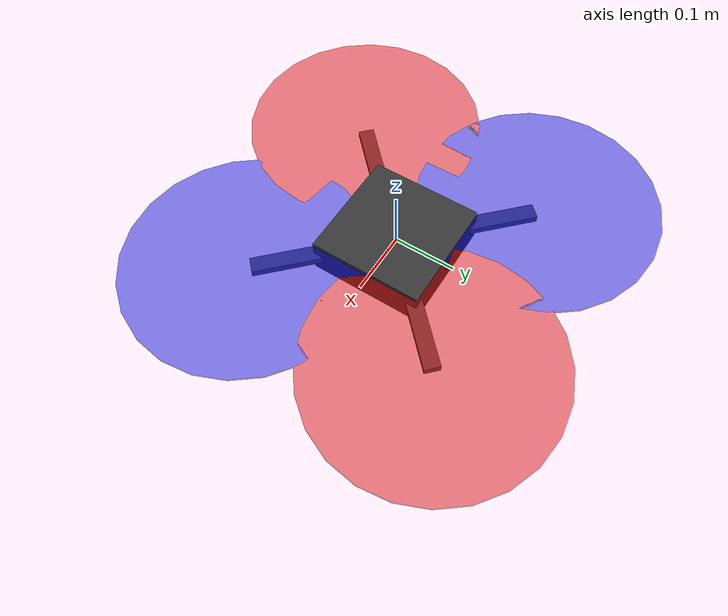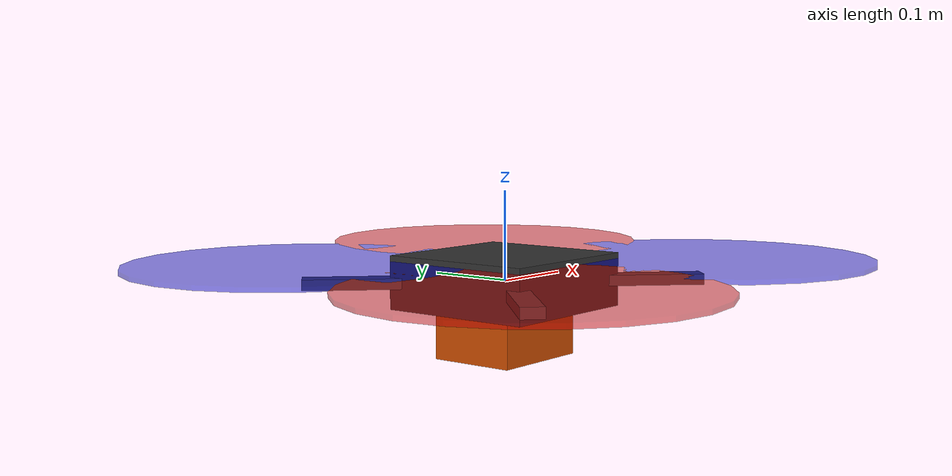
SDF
<?xml version="1.0" ?>
<sdf version="1.6">
  <model name="delivery_drone">

    <!-- ================================================================
         BASE LINK
    ================================================================ -->
    <link name="base_link">
      <inertial>
        <mass>2.5</mass>
        <inertia>
          <!-- Approximate inertia for 450mm X-frame at 2.5 kg -->
          <ixx>0.0820</ixx>
          <ixy>0.0</ixy>
          <ixz>0.0</ixz>
          <iyy>0.0820</iyy>
          <iyz>0.0</iyz>
          <izz>0.1490</izz>
        </inertia>
      </inertial>

      <!-- Central body (box visual) -->
      <visual name="body_visual">
        <pose>0 0 0 0 0 0</pose>
        <geometry>
          <box>
            <size>0.18 0.18 0.06</size>
          </box>
        </geometry>
        <material>
          <ambient>0.1 0.1 0.1 1</ambient>
          <diffuse>0.2 0.2 0.2 1</diffuse>
          <specular>0.05 0.05 0.05 1</specular>
        </material>
      </visual>
      <collision name="body_collision">
        <pose>0 0 0 0 0 0</pose>
        <geometry>
          <box>
            <size>0.18 0.18 0.06</size>
          </box>
        </geometry>
      </collision>

      <!-- Arm FR (front-right) -->
      <visual name="arm_fr_visual">
        <pose>0.08 -0.08 0 0 0 -0.7854</pose>
        <geometry><box><size>0.22 0.025 0.012</size></box></geometry>
        <material><ambient>0.3 0.3 0.3 1</ambient></material>
      </visual>
      <!-- Arm BL (back-left) -->
      <visual name="arm_bl_visual">
        <pose>-0.08 0.08 0 0 0 -0.7854</pose>
        <geometry><box><size>0.22 0.025 0.012</size></box></geometry>
        <material><ambient>0.3 0.3 0.3 1</ambient></material>
      </visual>
      <!-- Arm FL (front-left) -->
      <visual name="arm_fl_visual">
        <pose>0.08 0.08 0 0 0 0.7854</pose>
        <geometry><box><size>0.22 0.025 0.012</size></box></geometry>
        <material><ambient>0.3 0.3 0.3 1</ambient></material>
      </visual>
      <!-- Arm BR (back-right) -->
      <visual name="arm_br_visual">
        <pose>-0.08 -0.08 0 0 0 0.7854</pose>
        <geometry><box><size>0.22 0.025 0.012</size></box></geometry>
        <material><ambient>0.3 0.3 0.3 1</ambient></material>
      </visual>

      <!-- Payload bay (below body) -->
      <visual name="payload_bay_visual">
        <pose>0 0 -0.06 0 0 0</pose>
        <geometry><box><size>0.12 0.10 0.05</size></box></geometry>
        <material><ambient>0.6 0.2 0.0 1</ambient><diffuse>0.8 0.3 0.0 1</diffuse></material>
      </visual>
      <collision name="payload_bay_collision">
        <pose>0 0 -0.06 0 0 0</pose>
        <geometry><box><size>0.12 0.10 0.05</size></box></geometry>
      </collision>

      <!-- IMU sensor -->
      <sensor name="imu_sensor" type="imu">
        <pose>0 0 0 0 0 0</pose>
        <always_on>true</always_on>
        <update_rate>200</update_rate>
        <imu>
          <angular_velocity>
            <x><noise type="gaussian"><mean>0</mean><stddev>0.009</stddev></noise></x>
            <y><noise type="gaussian"><mean>0</mean><stddev>0.009</stddev></noise></y>
            <z><noise type="gaussian"><mean>0</mean><stddev>0.009</stddev></noise></z>
          </angular_velocity>
          <linear_acceleration>
            <x><noise type="gaussian"><mean>0</mean><stddev>0.021</stddev></noise></x>
            <y><noise type="gaussian"><mean>0</mean><stddev>0.021</stddev></noise></y>
            <z><noise type="gaussian"><mean>0</mean><stddev>0.021</stddev></noise></z>
          </linear_acceleration>
        </imu>
        <plugin name="imu_plugin" filename="libgazebo_ros_imu_sensor.so">
          <ros>
            <namespace>/drone</namespace>
            <remapping>~/out:=/imu/data</remapping>
          </ros>
          <initial_orientation_as_reference>false</initial_orientation_as_reference>
          <frame_name>base_link</frame_name>
        </plugin>
      </sensor>

      <!-- GPS sensor (simulating u-blox M9N) -->
      <sensor name="gps_sensor" type="gps">
        <pose>0 0 0.04 0 0 0</pose>
        <always_on>true</always_on>
        <update_rate>10</update_rate>
        <gps>
          <position_sensing>
            <horizontal><noise type="gaussian"><mean>0</mean><stddev>0.5</stddev></noise></horizontal>
            <vertical><noise type="gaussian"><mean>0</mean><stddev>0.8</stddev></noise></vertical>
          </position_sensing>
          <velocity_sensing>
            <horizontal><noise type="gaussian"><mean>0</mean><stddev>0.05</stddev></noise></horizontal>
            <vertical><noise type="gaussian"><mean>0</mean><stddev>0.1</stddev></noise></vertical>
          </velocity_sensing>
        </gps>
        <plugin name="gps_plugin" filename="libgazebo_ros_gps_sensor.so">
          <ros>
            <namespace>/drone</namespace>
            <remapping>~/out:=/gps/fix</remapping>
          </ros>
          <frame_name>base_link</frame_name>
        </plugin>
      </sensor>

      <!-- Downward camera (for ArUco precision landing) -->
      <sensor name="camera_down" type="camera">
        <pose>0 0 -0.09 0 1.5708 0</pose>
        <always_on>true</always_on>
        <update_rate>30</update_rate>
        <camera name="down_camera">
          <horizontal_fov>1.5708</horizontal_fov>
          <image>
            <width>640</width>
            <height>480</height>
            <format>R8G8B8</format>
          </image>
          <clip><near>0.05</near><far>50</far></clip>
          <noise><type>gaussian</type><mean>0</mean><stddev>0.007</stddev></noise>
        </camera>
        <plugin name="camera_down_plugin" filename="libgazebo_ros_camera.so">
          <ros>
            <namespace>/drone</namespace>
            <remapping>image_raw:=/camera/down/image_raw</remapping>
            <remapping>camera_info:=/camera/down/camera_info</remapping>
          </ros>
          <camera_name>down</camera_name>
          <frame_name>camera_down_frame</frame_name>
        </plugin>
      </sensor>

      <!-- Forward camera (for visual obstacle detection) -->
      <sensor name="camera_forward" type="camera">
        <pose>0.09 0 0.01 0 0 0</pose>
        <always_on>true</always_on>
        <update_rate>30</update_rate>
        <camera name="forward_camera">
          <horizontal_fov>1.0472</horizontal_fov>
          <image>
            <width>640</width>
            <height>480</height>
            <format>R8G8B8</format>
          </image>
          <clip><near>0.05</near><far>100</far></clip>
          <noise><type>gaussian</type><mean>0</mean><stddev>0.007</stddev></noise>
        </camera>
        <plugin name="camera_forward_plugin" filename="libgazebo_ros_camera.so">
          <ros>
            <namespace>/drone</namespace>
            <remapping>image_raw:=/camera/forward/image_raw</remapping>
            <remapping>camera_info:=/camera/forward/camera_info</remapping>
          </ros>
          <camera_name>forward</camera_name>
          <frame_name>camera_forward_frame</frame_name>
        </plugin>
      </sensor>

      <!-- 2D LiDAR (simulating RPLidar A1M8 — 360° at 10 Hz, 12 m range) -->
      <sensor name="lidar" type="ray">
        <pose>0 0 0.035 0 0 0</pose>
        <always_on>true</always_on>
        <update_rate>10</update_rate>
        <ray>
          <scan>
            <horizontal>
              <samples>360</samples>
              <resolution>1</resolution>
              <min_angle>-3.14159</min_angle>
              <max_angle>3.14159</max_angle>
            </horizontal>
          </scan>
          <range>
            <min>0.15</min>
            <max>12.0</max>
            <resolution>0.01</resolution>
          </range>
          <noise>
            <type>gaussian</type>
            <mean>0</mean>
            <stddev>0.01</stddev>
          </noise>
        </ray>
        <plugin name="lidar_plugin" filename="libgazebo_ros_ray_sensor.so">
          <ros>
            <namespace>/drone</namespace>
            <remapping>~/out:=/scan</remapping>
          </ros>
          <output_type>sensor_msgs/LaserScan</output_type>
          <frame_name>lidar_frame</frame_name>
        </plugin>
      </sensor>

    </link>

    <!-- Motor 1: Front-Right -->
    <link name="rotor_0">
      <pose>0.159 -0.159 0.021 0 0 0</pose>
      <inertial>
        <mass>0.025</mass>
        <inertia><ixx>9.75e-07</ixx><ixy>0</ixy><ixz>0</ixz>
                 <iyy>0.000166704</iyy><iyz>0</iyz><izz>0.000167604</izz></inertia>
      </inertial>
      <visual name="rotor_0_visual">
        <pose>0 0 0 0 0 0</pose>
        <geometry><cylinder><length>0.005</length><radius>0.1905</radius></cylinder></geometry>
        <material><ambient>0 0 0.8 0.5</ambient><diffuse>0 0 0.8 0.5</diffuse></material>
      </visual>
    </link>
    <joint name="rotor_0_joint" type="revolute">
      <parent>base_link</parent><child>rotor_0</child>
      <axis>
        <xyz>0 0 1</xyz>
        <limit><lower>-1e+16</lower><upper>1e+16</upper></limit>
        <dynamics><damping>0.004</damping></dynamics>
      </axis>
    </joint>

    <!-- Motor 2: Rear-Left -->
    <link name="rotor_1">
      <pose>-0.159 0.159 0.021 0 0 0</pose>
      <inertial>
        <mass>0.025</mass>
        <inertia><ixx>9.75e-07</ixx><ixy>0</ixy><ixz>0</ixz>
                 <iyy>0.000166704</iyy><iyz>0</iyz><izz>0.000167604</izz></inertia>
      </inertial>
      <visual name="rotor_1_visual">
        <pose>0 0 0 0 0 0</pose>
        <geometry><cylinder><length>0.005</length><radius>0.1905</radius></cylinder></geometry>
        <material><ambient>0 0 0.8 0.5</ambient><diffuse>0 0 0.8 0.5</diffuse></material>
      </visual>
    </link>
    <joint name="rotor_1_joint" type="revolute">
      <parent>base_link</parent><child>rotor_1</child>
      <axis>
        <xyz>0 0 1</xyz>
        <limit><lower>-1e+16</lower><upper>1e+16</upper></limit>
        <dynamics><damping>0.004</damping></dynamics>
      </axis>
    </joint>

    <!-- Motor 3: Front-Left -->
    <link name="rotor_2">
      <pose>0.159 0.159 0.021 0 0 0</pose>
      <inertial>
        <mass>0.025</mass>
        <inertia><ixx>9.75e-07</ixx><ixy>0</ixy><ixz>0</ixz>
                 <iyy>0.000166704</iyy><iyz>0</iyz><izz>0.000167604</izz></inertia>
      </inertial>
      <visual name="rotor_2_visual">
        <pose>0 0 0 0 0 0</pose>
        <geometry><cylinder><length>0.005</length><radius>0.1905</radius></cylinder></geometry>
        <material><ambient>0.8 0 0 0.5</ambient><diffuse>0.8 0 0 0.5</diffuse></material>
      </visual>
    </link>
    <joint name="rotor_2_joint" type="revolute">
      <parent>base_link</parent><child>rotor_2</child>
      <axis>
        <xyz>0 0 -1</xyz>
        <limit><lower>-1e+16</lower><upper>1e+16</upper></limit>
        <dynamics><damping>0.004</damping></dynamics>
      </axis>
    </joint>

    <!-- Motor 4: Rear-Right -->
    <link name="rotor_3">
      <pose>-0.159 -0.159 0.021 0 0 0</pose>
      <inertial>
        <mass>0.025</mass>
        <inertia><ixx>9.75e-07</ixx><ixy>0</ixy><ixz>0</ixz>
                 <iyy>0.000166704</iyy><iyz>0</iyz><izz>0.000167604</izz></inertia>
      </inertial>
      <visual name="rotor_3_visual">
        <pose>0 0 0 0 0 0</pose>
        <geometry><cylinder><length>0.005</length><radius>0.1905</radius></cylinder></geometry>
        <material><ambient>0.8 0 0 0.5</ambient><diffuse>0.8 0 0 0.5</diffuse></material>
      </visual>
    </link>
    <joint name="rotor_3_joint" type="revolute">
      <parent>base_link</parent><child>rotor_3</child>
      <axis>
        <xyz>0 0 -1</xyz>
        <limit><lower>-1e+16</lower><upper>1e+16</upper></limit>
        <dynamics><damping>0.004</damping></dynamics>
      </axis>
    </joint>

    <plugin name="ArduPilotPlugin" filename="libArduPilotPlugin.so">
      <fdm_addr>127.0.0.1</fdm_addr>
      <fdm_port_in>9002</fdm_port_in>
      <fdm_port_out>9003</fdm_port_out>
      <connectionTimeoutMaxCount>5</connectionTimeoutMaxCount>
      <!-- Rotate Gazebo ENU frame to ArduPilot NED frame -->
      <modelXYZToAirplaneXForwardZDown>0 0 0 3.141593 0 0</modelXYZToAirplaneXForwardZDown>
      <gazeboXYZToNED>0 0 0 3.141593 0 1.5707963</gazeboXYZToNED>
      <imuName>imu_sensor</imuName>

      <!-- Motor 1: Front-Right CW (negative multiplier = CW) -->
      <control channel="0">
        <jointName>rotor_0_joint</jointName>
        <useForce>1</useForce>
        <multiplier>-838</multiplier>
        <offset>-0.5</offset>
        <servo_min>1000</servo_min>
        <servo_max>2000</servo_max>
        <type>VELOCITY</type>
        <p_gain>0.20</p_gain>
        <i_gain>0</i_gain>
        <d_gain>0</d_gain>
        <i_max>0</i_max>
        <i_min>0</i_min>
        <cmd_max>2.5</cmd_max>
        <cmd_min>-2.5</cmd_min>
      </control>

      <!-- Motor 2: Rear-Left CW -->
      <control channel="1">
        <jointName>rotor_1_joint</jointName>
        <useForce>1</useForce>
        <multiplier>-838</multiplier>
        <offset>-0.5</offset>
        <servo_min>1000</servo_min>
        <servo_max>2000</servo_max>
        <type>VELOCITY</type>
        <p_gain>0.20</p_gain>
        <i_gain>0</i_gain>
        <d_gain>0</d_gain>
        <i_max>0</i_max>
        <i_min>0</i_min>
        <cmd_max>2.5</cmd_max>
        <cmd_min>-2.5</cmd_min>
      </control>

      <!-- Motor 3: Front-Left CCW (positive multiplier = CCW) -->
      <control channel="2">
        <jointName>rotor_2_joint</jointName>
        <useForce>1</useForce>
        <multiplier>838</multiplier>
        <offset>-0.5</offset>
        <servo_min>1000</servo_min>
        <servo_max>2000</servo_max>
        <type>VELOCITY</type>
        <p_gain>0.20</p_gain>
        <i_gain>0</i_gain>
        <d_gain>0</d_gain>
        <i_max>0</i_max>
        <i_min>0</i_min>
        <cmd_max>2.5</cmd_max>
        <cmd_min>-2.5</cmd_min>
      </control>

      <!-- Motor 4: Rear-Right CCW -->
      <control channel="3">
        <jointName>rotor_3_joint</jointName>
        <useForce>1</useForce>
        <multiplier>838</multiplier>
        <offset>-0.5</offset>
        <servo_min>1000</servo_min>
        <servo_max>2000</servo_max>
        <type>VELOCITY</type>
        <p_gain>0.20</p_gain>
        <i_gain>0</i_gain>
        <d_gain>0</d_gain>
        <i_max>0</i_max>
        <i_min>0</i_min>
        <cmd_max>2.5</cmd_max>
        <cmd_min>-2.5</cmd_min>
      </control>
    </plugin>

  </model>
</sdf>
